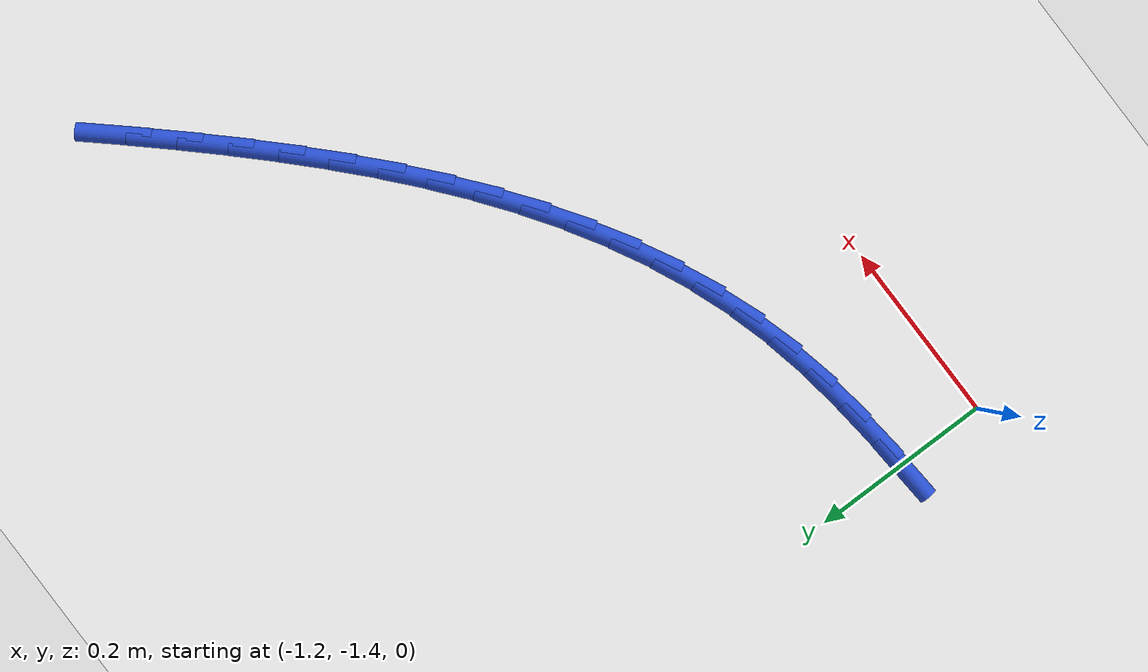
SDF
<sdf version="1.6">
 <world name="default">
  <model name="ground_plane">
   <static>1</static>
   <link name="link">
    <collision name="collision">
     <geometry><plane><normal>0 0 1</normal><size>100 100</size></plane></geometry>
     <surface><friction><ode><mu>100</mu><mu2>50</mu2></ode></friction></surface>
    </collision>
    <visual name="visual">
     <cast_shadows>0</cast_shadows>
     <geometry><plane><normal>0 0 1</normal><size>100 100</size></plane></geometry>
     <material>
      <script><uri>file://media/materials/scripts/gazebo.material</uri><name>Gazebo/WhiteGlow</name></script>
     </material>
    </visual>
   </link>
  </model>
  <model name="line">
   <link name="link_113">
    <pose>-1.2013226639518149 -1.300310746211334 0.01 0 1.57 0.07140924836283871</pose>
    <collision name="collision">
     <geometry><cylinder><radius>0.01</radius><length>0.08</length></cylinder></geometry>
    </collision>
    <visual name="visual">
     <material>
      <script><name>Gazebo/Blue</name><uri>file://media/materials/scripts/gazebo.material</uri></script>
     </material>
     <geometry><cylinder><radius>0.01</radius><length>0.08</length></cylinder></geometry>
    </visual>
   </link>
   <link name="link_114">
    <pose>-1.1500482127538516 -1.296643039849219 0.01 0 1.57 0.10903351827014982</pose>
    <collision name="collision">
     <geometry><cylinder><radius>0.01</radius><length>0.08</length></cylinder></geometry>
    </collision>
    <visual name="visual">
     <material>
      <script><name>Gazebo/Blue</name><uri>file://media/materials/scripts/gazebo.material</uri></script>
     </material>
     <geometry><cylinder><radius>0.01</radius><length>0.08</length></cylinder></geometry>
    </visual>
   </link>
   <link name="link_115">
    <pose>-1.0995112647162475 -1.2911108785280163 0.01 0 1.57 0.15792139565830593</pose>
    <collision name="collision">
     <geometry><cylinder><radius>0.01</radius><length>0.08</length></cylinder></geometry>
    </collision>
    <visual name="visual">
     <material>
      <script><name>Gazebo/Blue</name><uri>file://media/materials/scripts/gazebo.material</uri></script>
     </material>
     <geometry><cylinder><radius>0.01</radius><length>0.08</length></cylinder></geometry>
    </visual>
   </link>
   <link name="link_116">
    <pose>-1.0498730449941225 -1.2832061193732558 0.01 0 1.57 0.2184792370585496</pose>
    <collision name="collision">
     <geometry><cylinder><radius>0.01</radius><length>0.08</length></cylinder></geometry>
    </collision>
    <visual name="visual">
     <material>
      <script><name>Gazebo/Blue</name><uri>file://media/materials/scripts/gazebo.material</uri></script>
     </material>
     <geometry><cylinder><radius>0.01</radius><length>0.08</length></cylinder></geometry>
    </visual>
   </link>
   <link name="link_117">
    <pose>-1.0012947787425979 -1.2724206195104668 0.01 0 1.57 0.28985826745176335</pose>
    <collision name="collision">
     <geometry><cylinder><radius>0.01</radius><length>0.08</length></cylinder></geometry>
    </collision>
    <visual name="visual">
     <material>
      <script><name>Gazebo/Blue</name><uri>file://media/materials/scripts/gazebo.material</uri></script>
     </material>
     <geometry><cylinder><radius>0.01</radius><length>0.08</length></cylinder></geometry>
    </visual>
   </link>
   <link name="link_118">
    <pose>-0.9539240542928723 -1.258291901170531 0.01 0 1.57 0.3622976889982006</pose>
    <collision name="collision">
     <geometry><cylinder><radius>0.01</radius><length>0.08</length></cylinder></geometry>
    </collision>
    <visual name="visual">
     <material>
      <script><name>Gazebo/Blue</name><uri>file://media/materials/scripts/gazebo.material</uri></script>
     </material>
     <geometry><cylinder><radius>0.01</radius><length>0.08</length></cylinder></geometry>
    </visual>
   </link>
   <link name="link_119">
    <pose>-0.9077761528865732 -1.2408005382230531 0.01 0 1.57 0.4298850591375134</pose>
    <collision name="collision">
     <geometry><cylinder><radius>0.01</radius><length>0.08</length></cylinder></geometry>
    </collision>
    <visual name="visual">
     <material>
      <script><name>Gazebo/Blue</name><uri>file://media/materials/scripts/gazebo.material</uri></script>
     </material>
     <geometry><cylinder><radius>0.01</radius><length>0.08</length></cylinder></geometry>
    </visual>
   </link>
   <link name="link_120">
    <pose>-0.8627919945132736 -1.220176115189184 0.01 0 1.57 0.49212453726399574</pose>
    <collision name="collision">
     <geometry><cylinder><radius>0.01</radius><length>0.08</length></cylinder></geometry>
    </collision>
    <visual name="visual">
     <material>
      <script><name>Gazebo/Blue</name><uri>file://media/materials/scripts/gazebo.material</uri></script>
     </material>
     <geometry><cylinder><radius>0.01</radius><length>0.08</length></cylinder></geometry>
    </visual>
   </link>
   <link name="link_121">
    <pose>-0.8189116718696896 -1.1966509869137063 0.01 0 1.57 0.5488159093807266</pose>
    <collision name="collision">
     <geometry><cylinder><radius>0.01</radius><length>0.08</length></cylinder></geometry>
    </collision>
    <visual name="visual">
     <material>
      <script><name>Gazebo/Blue</name><uri>file://media/materials/scripts/gazebo.material</uri></script>
     </material>
     <geometry><cylinder><radius>0.01</radius><length>0.08</length></cylinder></geometry>
    </visual>
   </link>
   <link name="link_122">
    <pose>-0.7760752776525371 -1.1704575082414008 0.01 0 1.57 0.59994669943052</pose>
    <collision name="collision">
     <geometry><cylinder><radius>0.01</radius><length>0.08</length></cylinder></geometry>
    </collision>
    <visual name="visual">
     <material>
      <script><name>Gazebo/Blue</name><uri>file://media/materials/scripts/gazebo.material</uri></script>
     </material>
     <geometry><cylinder><radius>0.01</radius><length>0.08</length></cylinder></geometry>
    </visual>
   </link>
   <link name="link_123">
    <pose>-0.7342229045585307 -1.1418280340170492 0.01 0 1.57 0.6456387145787632</pose>
    <collision name="collision">
     <geometry><cylinder><radius>0.01</radius><length>0.08</length></cylinder></geometry>
    </collision>
    <visual name="visual">
     <material>
      <script><name>Gazebo/Blue</name><uri>file://media/materials/scripts/gazebo.material</uri></script>
     </material>
     <geometry><cylinder><radius>0.01</radius><length>0.08</length></cylinder></geometry>
    </visual>
   </link>
   <link name="link_124">
    <pose>-0.6932946452843857 -1.1109949190854336 0.01 0 1.57 0.6860990143404162</pose>
    <collision name="collision">
     <geometry><cylinder><radius>0.01</radius><length>0.08</length></cylinder></geometry>
    </collision>
    <visual name="visual">
     <material>
      <script><name>Gazebo/Blue</name><uri>file://media/materials/scripts/gazebo.material</uri></script>
     </material>
     <geometry><cylinder><radius>0.01</radius><length>0.08</length></cylinder></geometry>
    </visual>
   </link>
   <link name="link_125">
    <pose>-0.6532305925268185 -1.0781905182913352 0.01 0 1.57 0.7215794637479647</pose>
    <collision name="collision">
     <geometry><cylinder><radius>0.01</radius><length>0.08</length></cylinder></geometry>
    </collision>
    <visual name="visual">
     <material>
      <script><name>Gazebo/Blue</name><uri>file://media/materials/scripts/gazebo.material</uri></script>
     </material>
     <geometry><cylinder><radius>0.01</radius><length>0.08</length></cylinder></geometry>
    </visual>
   </link>
   <link name="link_126">
    <pose>-0.6139708389825432 -1.0436471864795358 0.01 0 1.57 0.7523458349270017</pose>
    <collision name="collision">
     <geometry><cylinder><radius>0.01</radius><length>0.08</length></cylinder></geometry>
    </collision>
    <visual name="visual">
     <material>
      <script><name>Gazebo/Blue</name><uri>file://media/materials/scripts/gazebo.material</uri></script>
     </material>
     <geometry><cylinder><radius>0.01</radius><length>0.08</length></cylinder></geometry>
    </visual>
   </link>
   <link name="link_127">
    <pose>-0.5754554773482767 -1.0075972784948177 0.01 0 1.57 0.77865556486706</pose>
    <collision name="collision">
     <geometry><cylinder><radius>0.01</radius><length>0.08</length></cylinder></geometry>
    </collision>
    <visual name="visual">
     <material>
      <script><name>Gazebo/Blue</name><uri>file://media/materials/scripts/gazebo.material</uri></script>
     </material>
     <geometry><cylinder><radius>0.01</radius><length>0.08</length></cylinder></geometry>
    </visual>
   </link>
   <link name="link_128">
    <pose>-0.5376246003207329 -0.9702731491819614 0.01 0 1.57 0.8007424776949246</pose>
    <collision name="collision">
     <geometry><cylinder><radius>0.01</radius><length>0.08</length></cylinder></geometry>
    </collision>
    <visual name="visual">
     <material>
      <script><name>Gazebo/Blue</name><uri>file://media/materials/scripts/gazebo.material</uri></script>
     </material>
     <geometry><cylinder><radius>0.01</radius><length>0.08</length></cylinder></geometry>
    </visual>
   </link>
   <link name="link_129">
    <pose>-0.5004183005966277 -0.931907153385749 0.01 0 1.57 0.8188066384006342</pose>
    <collision name="collision">
     <geometry><cylinder><radius>0.01</radius><length>0.08</length></cylinder></geometry>
    </collision>
    <visual name="visual">
     <material>
      <script><name>Gazebo/Blue</name><uri>file://media/materials/scripts/gazebo.material</uri></script>
     </material>
     <geometry><cylinder><radius>0.01</radius><length>0.08</length></cylinder></geometry>
    </visual>
   </link>
   <link name="link_130">
    <pose>-0.46377667087267754 -0.8927316459509632 0.01 0 1.57 0.8330076925698285</pose>
    <collision name="collision">
     <geometry><cylinder><radius>0.01</radius><length>0.08</length></cylinder></geometry>
    </collision>
    <visual name="visual">
     <material>
      <script><name>Gazebo/Blue</name><uri>file://media/materials/scripts/gazebo.material</uri></script>
     </material>
     <geometry><cylinder><radius>0.01</radius><length>0.08</length></cylinder></geometry>
    </visual>
   </link>
   <link name="link_131">
    <pose>-0.42763980384559624 -0.852978981722384 0.01 0 1.57 0.8434603506067554</pose>
    <collision name="collision">
     <geometry><cylinder><radius>0.01</radius><length>0.08</length></cylinder></geometry>
    </collision>
    <visual name="visual">
     <material>
      <script><name>Gazebo/Blue</name><uri>file://media/materials/scripts/gazebo.material</uri></script>
     </material>
     <geometry><cylinder><radius>0.01</radius><length>0.08</length></cylinder></geometry>
    </visual>
   </link>
  </model>
 </world>
</sdf>
